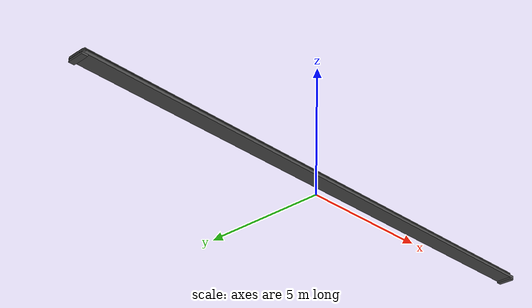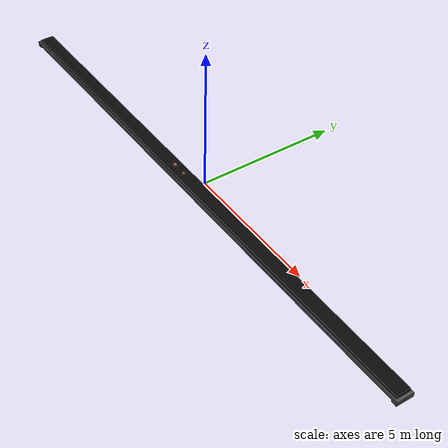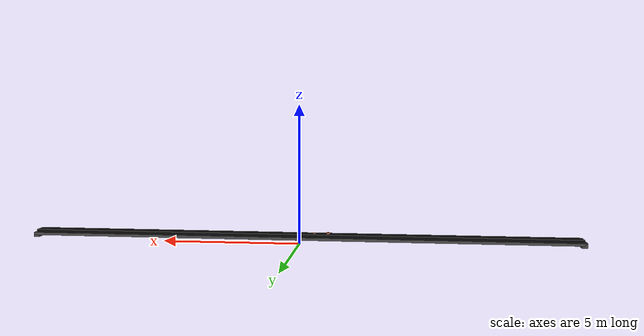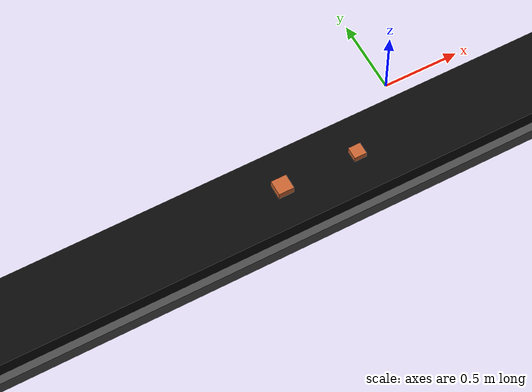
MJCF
<mujoco model="fixed_conveyor_system">
  <compiler angle="radian" coordinate="local" inertiafromgeom="true" />
  <option timestep="0.001" integrator="RK4" gravity="0 0 -9.81" />

  <asset>
    <material name="conveyor_mat" rgba="0.2 0.2 0.2 1" />
    <material name="ground_mat" rgba="0.9 0.9 0.9 1" />
    <material name="box_mat" rgba="0.8 0.4 0.2 1" />
    <material name="support_mat" rgba="0.3 0.3 0.3 1" />
    <texture name="moving_belt" type="2d" builtin="checker" rgb1="0.1 0.1 0.1" rgb2="0.3 0.3 0.3" width="100" height="100" />
    <material name="belt_material" texture="moving_belt" texrepeat="50 2" rgba="0.2 0.2 0.2 1" />
  </asset>

  <worldbody>

    <body name="conveyor_frame" pos="0 -0.5 0.1">

      <geom name="left_support" type="box" size="0.1 0.3 0.08" pos="-10 0.0 0.0" material="support_mat" />
      <geom name="right_support" type="box" size="0.1 0.3 0.08" pos="10 0.0 0.0" material="support_mat" />
      <geom name="frame_base" type="box" size="10.1 0.3 0.05" pos="0.0 0.0 0.04" material="support_mat" />

      <geom name="belt_surface" type="box" size="10 0.25 0.08" pos="0.0 0.0 0.12" material="belt_material" friction="5.0 2.0 0.01" />
    </body>

    <body name="test_box1" pos="-1.0 -0.5 0.3">
      <joint name="box1_free" type="free" />
      <inertial pos="0 0 0" mass="0.1" diaginertia="0.01 0.01 0.01" />
      <geom name="box1_geom" type="box" size="0.05 0.05 0.05" material="box_mat" />
    </body>

    <body name="test_box2" pos="-0.5 -0.5 0.3">
      <joint name="box2_free" type="free" />
      <inertial pos="0 0 0" mass="0.08" diaginertia="0.008 0.008 0.008" />
      <geom name="box2_geom" type="box" size="0.04 0.04 0.04" material="box_mat" />
    </body>

    <light name="side_light1" pos="3 3 3" dir="-1 -1 -1" diffuse="0.4 0.4 0.4" />
    <light name="side_light2" pos="-3 3 3" dir="1 -1 -1" diffuse="0.4 0.4 0.4" />
  </worldbody>
</mujoco>
